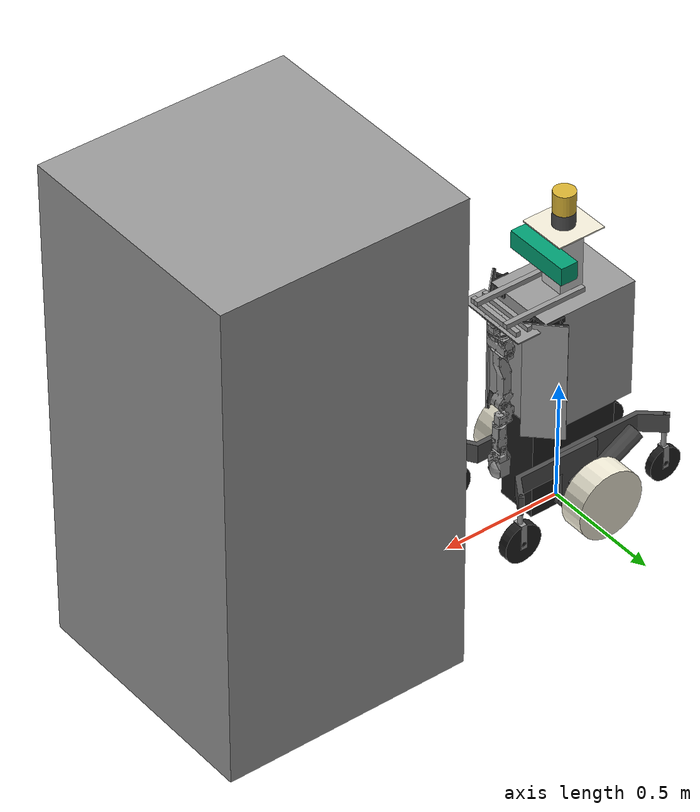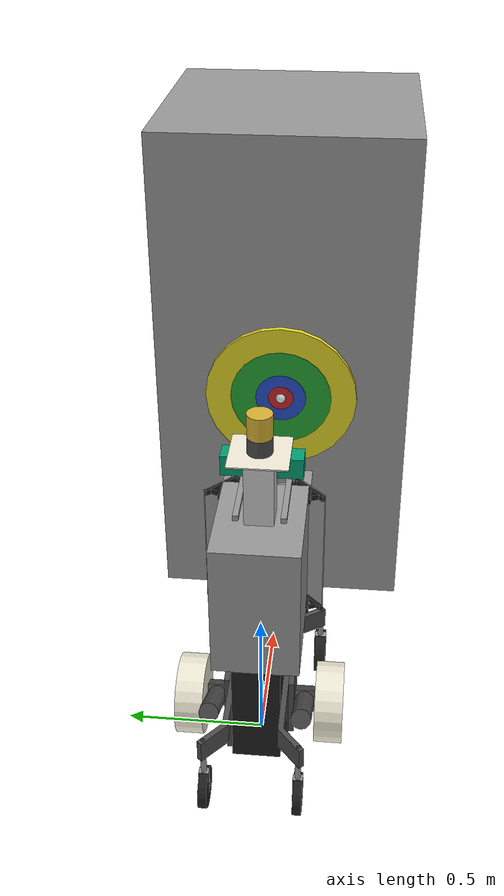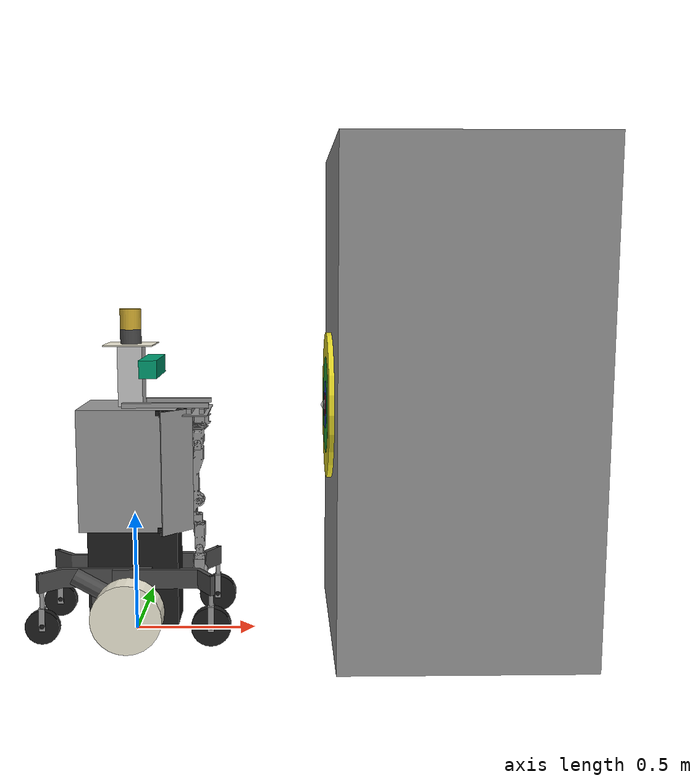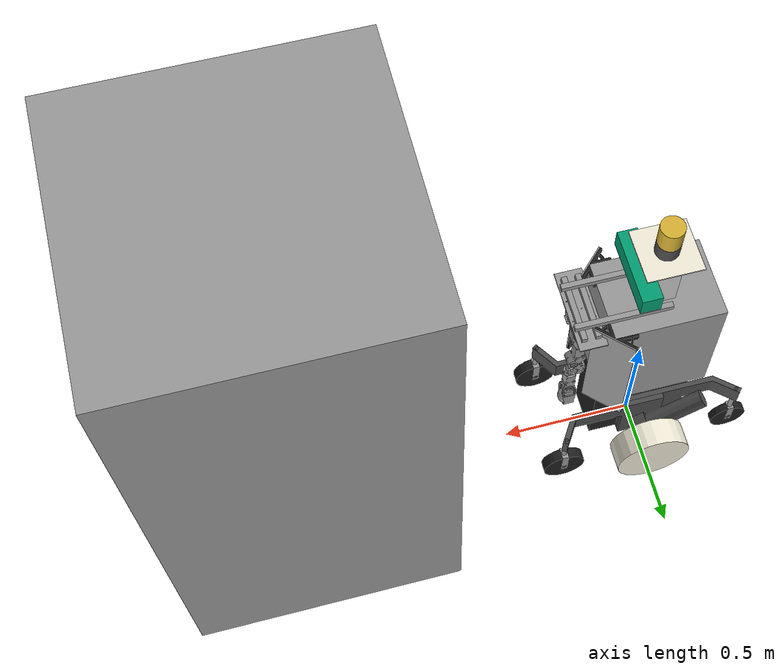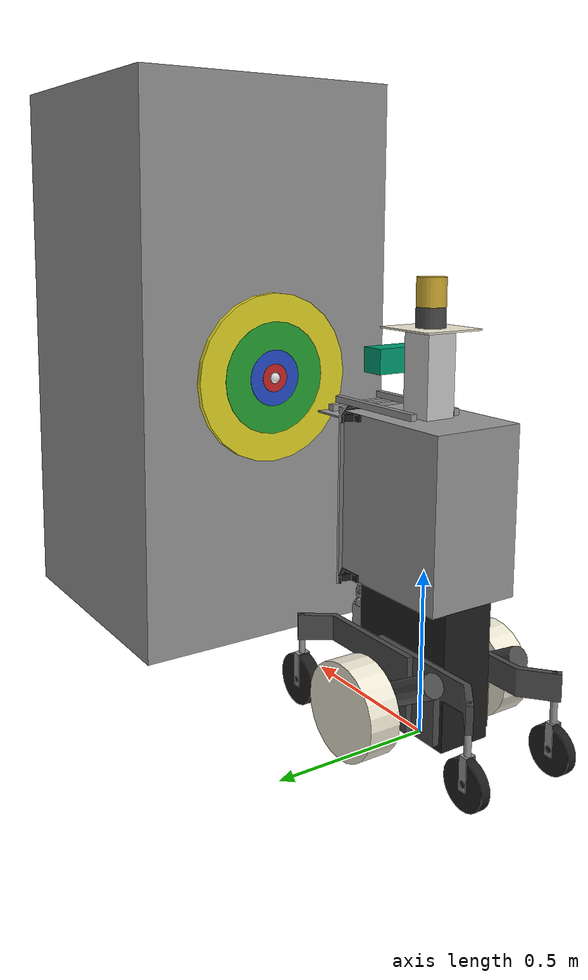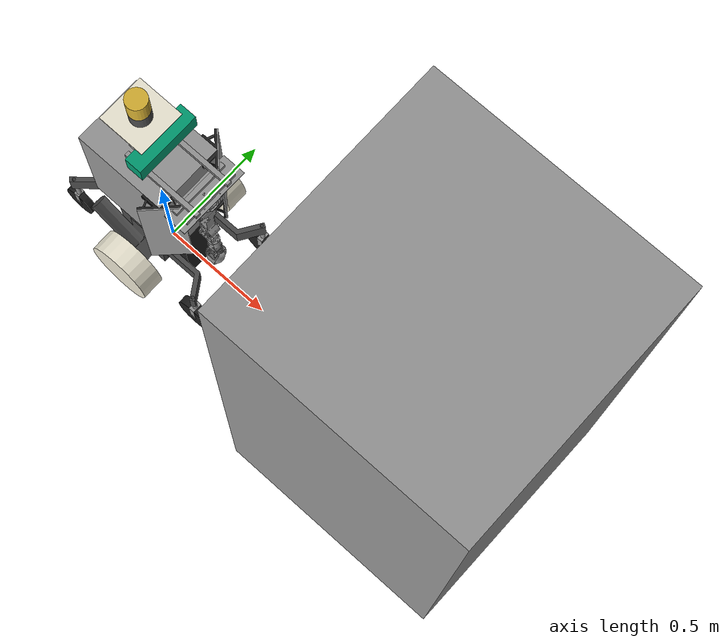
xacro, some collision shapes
<?xml version="1.0" ?>
<robot name="infant" xmlns:xacro="http://ros.org/wiki/xacro">

	<!-- constants for robot dimentions -->
	<xacro:property name="pi" value="3.141592"/>
	<xacro:property name="battery_depth" value="0.370"/>
	<xacro:property name="battery_width" value="0.170"/>
	<xacro:property name="battery_height" value="0.415"/>
	<xacro:property name="rocker_bogie_back_depth" value="0.46056514"/>
	<xacro:property name="rocker_bogie_back_width" value="0.09383127"/>
	<xacro:property name="rocker_bogie_back_height" value="0.230"/>
	<xacro:property name="rocker_bogie_front_depth" value="0.42535668"/>
	<xacro:property name="rocker_bogie_front_width" value="0.11153324"/>
	<xacro:property name="rocker_bogie_front_height" value="0.230"/>
	<xacro:property name="caster_small_length" value="0.065"/>
	<xacro:property name="caster_small_radius" value="0.010"/>
	<xacro:property name="caster_large_length" value="0.045"/>
	<xacro:property name="caster_large_radius" value="0.010"/>
	<xacro:property name="velodyne_base_length" value="0.0586740"/>
	<xacro:property name="velodyne_diameter" value="0.0853440"/>
	<xacro:property name="velodyne_top_length" value="0.0835714"/>
	<xacro:property name="velodyne_laser_depth" value="0.03475311"/>
	<xacro:property name="velodyne_laser_height" value="0.0404979"/>
	<xacro:property name="velodyne_laser_width" value="0.0468099"/>

	<xacro:property name="cam_px" value="0" />
	<xacro:property name="cam_pz" value="0" />
	<xacro:property name="cam_or" value="0" />
	<xacro:property name="cam_op" value="0" />
	<xacro:property name="cam_oy" value="0" />

	<xacro:property name="kinect_cam_py" value="-0.0125"/>

	<!-- inertial for box -->

	<!-- inertial for cylinder -->

	<!-- inertial for wheel -->

	<!-- inertial for box -->
	<xacro:macro
		name="default_box_inertial"
		params="mass depth width height x_offset y_offset z_offset">
		<inertial>
			<origin xyz="${x_offset} ${y_offset} ${z_offset}" rpy="0 0 0"/>
			<mass value="${mass}"/>
			<inertia
				ixx="1.0" ixy="0.0" ixz="0.0"
				iyy="1.0" iyz="0.0"
				izz="1.0"/>
		</inertial>
	</xacro:macro>

	<!-- inertial for cylinder -->
	<xacro:macro
		name="default_cylinder_inertial"
		params="mass length radius x_offset y_offset z_offset">
		<inertial>
			<origin xyz="${x_offset} ${y_offset} ${z_offset}" rpy="0 0 0"/>
			<mass value="${mass}"/>
			<inertia
				ixx="1.0" ixy="0.0" ixz="0.0"
				iyy="1.0" iyz="0.0"
				izz="1.0"/>
		</inertial>
	</xacro:macro>

	<!-- inertial for wheel -->
	<xacro:macro
		name="default_wheel_inertial"
		params="mass length radius x_offset y_offset z_offset">
		<inertial>
			<origin xyz="${x_offset} ${y_offset} ${z_offset}" rpy="0 0 0"/>
			<mass value="${mass}"/>
			<inertia
				ixx="1.0" ixy="0.0" ixz="0.0"
				iyy="1.0" iyz="0.0"
				izz="1.0"/>
		</inertial>
	</xacro:macro>

	<!-- import Rviz color -->
	<xacro:include filename="$(find infant_description)/materials/materials.xacro"/>

	<!-- import all Gazebo-customization elements, including Gazebo colors -->
	<xacro:include filename="$(find infant_description)/urdf/infant_repair2.gazebo.xacro"/>

	<link name="world"/>

	<joint name="fixed" type="fixed">
		<parent link="world"/>
		<child link="base_link"/>
		<origin xyz="0 0 0" rpy="0 0 0"/>
	</joint>

	<!-- rocker bogie -->
	<link name="base_link"/>

	<joint name="base_to_battery_joint" type="fixed">
		<parent link="base_link"/>
		<child link="battery_link"/>
		<origin xyz="0 0 0.145" rpy="0 0 0"/>
	</joint>

	<link name="battery_link">
		<visual>
			<geometry>
				<box size="${battery_depth} ${battery_width} ${battery_height}"/>
			</geometry>
			<origin xyz="0 0 0.1075" rpy="0 0 0"/>
			<material name="black"/>
		</visual>
		<collision>
			<geometry>
				<box size="${battery_depth} ${battery_width} ${battery_height}"/>
			</geometry>
			<origin xyz="0 0 0.1075" rpy="0 0 0"/>
		</collision>
		<xacro:default_box_inertial
			mass="40" depth="${battery_depth}" width="${battery_width}" height="${battery_height}"
			x_offset="0.0" y_offset="0.0" z_offset="0.085"/>
	</link>

	<xacro:macro name="rocker_bogie_back" params="prefix reflect1 reflect2">
		<joint name="rocker_bogie_back_${prefix}_joint" type="fixed">
			<parent link="battery_link"/>
			<child link="rocker_bogie_back_${prefix}_link"/>
			<origin xyz="0 ${reflect1*0.085} 0" rpy="0 0 0"/>
		</joint>

		<link name="rocker_bogie_back_${prefix}_link">
			<visual>
				<geometry>
					<mesh filename="package://infant_description/meshes/rocker_bogie_parts_back_${prefix}.dae"/>
				</geometry>
				<origin xyz="0 ${reflect2*(-0.020)} 0" rpy="0 ${pi} 0"/>
			</visual>
			<collision>
				<geometry>
					<box size="${rocker_bogie_back_depth} ${rocker_bogie_back_width} ${rocker_bogie_back_height}"/>
				</geometry>
				<origin
					xyz="-${(rocker_bogie_back_depth/2)-0.080} ${reflect1*(rocker_bogie_back_width/2)} 0.035" rpy="0 0 0"/>
			</collision>
			<xacro:default_box_inertial
				mass="5"
				depth="${rocker_bogie_back_depth}"
				width="${rocker_bogie_back_width}"
				height="${rocker_bogie_back_height}"
				x_offset="-${(rocker_bogie_back_depth/2)-0.080}"
				y_offset="${reflect1*(rocker_bogie_back_width/2)}"
				z_offset="0.035"/>
		</link>
	</xacro:macro>

	<xacro:rocker_bogie_back prefix="left" reflect1="1" reflect2="0"/>
	<xacro:rocker_bogie_back prefix="right" reflect1="-1" reflect2="1"/>

	<xacro:macro name="rocker_bogie_front" params="prefix reflect1 reflect2">
		<joint name="rocker_bogie_front_${prefix}_joint" type="fixed">
			<parent link="battery_link"/>
			<child link="rocker_bogie_front_${prefix}_link"/>
			<origin xyz="0 ${reflect1*0.105} 0" rpy="0 0 0"/>
		</joint>

		<link name="rocker_bogie_front_${prefix}_link">
			<visual>
				<geometry>
					<mesh filename="package://infant_description/meshes/rocker_bogie_parts_front_${prefix}.dae"/>
				</geometry>
				<origin xyz="0 ${reflect2*(0.020)} 0" rpy="${pi} 0 0"/>
			</visual>
			<collision>
				<geometry>
					<box size="${rocker_bogie_front_depth} ${rocker_bogie_front_width} ${rocker_bogie_front_height}"/>
				</geometry>
				<origin xyz="${(rocker_bogie_front_depth/2)-0.080} ${reflect1*(rocker_bogie_front_width/2)} 0.035" rpy="0 0 0"/>
			</collision>
			<xacro:default_box_inertial
				mass="5"
				depth="${rocker_bogie_front_depth}"
				width="${rocker_bogie_front_width}"
				height="${rocker_bogie_front_height}"
				x_offset="${(rocker_bogie_front_depth/2)-0.080}"
				y_offset="${reflect1*(rocker_bogie_front_width/2)}"
				z_offset="0.035"/>

		</link>
	</xacro:macro>

	<xacro:rocker_bogie_front prefix="left" reflect1="1" reflect2="1"/>
	<xacro:rocker_bogie_front prefix="right" reflect1="-1" reflect2="0"/>

	<xacro:macro name="caster_small" params="prefix reflect">
		<joint name="caster_small_${prefix}_joint" type="fixed">
			<parent link="rocker_bogie_back_${prefix}_link"/>
			<child link="caster_small_${prefix}_link"/>
			<origin xyz="-0.360 ${reflect*0.075} 0.070" rpy="0 0 0"/>
			<axis xyz="0 0 1"/>
		</joint>

		<link name="caster_small_${prefix}_link">
			<visual>
				<geometry>
					<mesh filename="package://infant_description/meshes/caster_small.dae"/>
				</geometry>
				<origin xyz="0 0 0" rpy="-${pi/2} 0 ${pi/2}"/>
			</visual>
			<collision>
				<geometry>
					<cylinder length="${caster_small_length}" radius="${caster_small_radius}"/>
				</geometry>
				<origin xyz="0 0 -${caster_small_length/2}" rpy="0 0 0"/>
			</collision>
			<xacro:default_cylinder_inertial
				mass="0.5" length="${caster_small_length}" radius="${caster_small_radius}"
				x_offset="0.0" y_offset="0.0" z_offset="-${caster_small_length/2}"/>
		</link>
	</xacro:macro>

	<xacro:caster_small prefix="left" reflect="1"/>
	<xacro:caster_small prefix="right" reflect="-1"/>

	<xacro:macro name="caster_large" params="prefix reflect">
		<joint name="caster_large_${prefix}_joint" type="fixed">
			<parent link="rocker_bogie_front_${prefix}_link"/>
			<child link="caster_large_${prefix}_link"/>
			<origin xyz="0.330 ${reflect*0.095} 0.070" rpy="0 0 0"/>
			<axis xyz="0 0 1"/>
		</joint>

		<link name="caster_large_${prefix}_link">
			<visual>
				<geometry>
					<mesh filename="package://infant_description/meshes/caster_large.dae"/>
				</geometry>
				<origin xyz="0 0 0" rpy="-${pi/2} 0 ${pi/2}"/>
			</visual>
			<collision>
				<geometry>
					<cylinder length="${caster_large_length}" radius="${caster_large_radius}"/>
				</geometry>
				<origin xyz="0 0 -${caster_large_length/2}" rpy="0 0 0"/>
			</collision>
			<xacro:default_cylinder_inertial
				mass="0.5" length="${caster_large_length}" radius="${caster_large_radius}"
				x_offset="0.0" y_offset="0.0" z_offset="-${caster_large_length/2}"/>
		</link>
	</xacro:macro>

	<xacro:caster_large prefix="left" reflect="1"/>
	<xacro:caster_large prefix="right" reflect="-1"/>

	<xacro:macro name="wheel" params="prefix reflect">
		<joint name="wheel_${prefix}_joint" type="fixed">
			<parent link="rocker_bogie_front_${prefix}_link"/>
			<child link="wheel_${prefix}_link"/>
			<origin xyz="0 ${reflect*0.145} 0" rpy="0 0 0"/>
			<axis xyz="0 1 0"/>
		</joint>

		<link name="wheel_${prefix}_link">
			<visual>
				<geometry>
					<cylinder length="0.100" radius="0.14240"/>
				</geometry>
				<origin xyz="0 0 0" rpy="${pi/2} 0 0"/>
				<material name="ivory"/>
			</visual>
			<collision>
				<geometry>
					<cylinder length="0.100" radius="0.14240"/>
				</geometry>
				<origin xyz="0 0 0" rpy="${pi/2} 0 0"/>
			</collision>
			<xacro:default_wheel_inertial
				mass="4" length="0.100" radius="0.142240"
				x_offset="0.0" y_offset="0.0" z_offset="0.0"/>
		</link>
	</xacro:macro>

	<xacro:wheel prefix="left" reflect="1"/>
	<xacro:wheel prefix="right" reflect="-1"/>

	<xacro:macro name="wheel_small" params="prefix">
		<joint name="wheel_small_${prefix}_joint" type="fixed">
			<parent link="caster_small_${prefix}_link"/>
			<child link="wheel_small_${prefix}_link"/>
			<origin xyz="0 0 -0.145" rpy="0 0 0"/>
			<axis xyz="0 1 0"/>
		</joint>

		<link name="wheel_small_${prefix}_link">
			<visual>
				<geometry>
					<cylinder length="0.030" radius="0.070"/>
				</geometry>
				<origin xyz="0 0 0" rpy="${pi/2} 0 0"/>
				<material name="black"/>
			</visual>
			<collision>
				<geometry>
					<cylinder length="0.030" radius="0.070"/>
				</geometry>
				<origin xyz="0 0 0" rpy="${pi/2} 0 0"/>
			</collision>
			<xacro:default_wheel_inertial
				mass="1.5" length="0.030" radius="0.070"
				x_offset="0.0" y_offset="0.0" z_offset="0.0"/>
		</link>
	</xacro:macro>

	<xacro:wheel_small prefix="left"/>
	<xacro:wheel_small prefix="right"/>

	<xacro:macro name="wheel_large" params="prefix">
		<joint name="wheel_large_${prefix}_joint" type="fixed">
			<parent link="caster_large_${prefix}_link"/>
			<child link="wheel_large_${prefix}_link"/>
			<origin xyz="0 0 -0.130" pry="0 0 0"/>
			<axis xyz="0 1 0"/>
		</joint>

		<link name="wheel_large_${prefix}_link">
			<visual>
				<geometry>
					<cylinder length="0.040" radius="0.080"/>
				</geometry>
				<origin xyz="0 0 0" rpy="${pi/2} 0 0"/>
				<material name="black"/>
			</visual>
			<collision>
				<geometry>
					<cylinder length="0.040" radius="0.080"/>
				</geometry>
				<origin xyz="0 0 0" rpy="${pi/2} 0 0"/>
			</collision>
			<xacro:default_wheel_inertial
				mass="1.5" length="0.040" radius="0.080"
				x_offset="0.0" y_offset="0.0" z_offset="0.0"/>
		</link>
	</xacro:macro>

	<xacro:wheel_large prefix="left"/>
	<xacro:wheel_large prefix="right"/>

	<!-- box -->
	<joint name="box_joint" type="fixed">
		<parent link="battery_link"/>
		<child link="box_link"/>
		<origin xyz="0 0 0.565" rpy="0 0 0"/>
	</joint>

	<link name="box_link">
		<visual>
			<geometry>
				<box size="0.400 0.300 0.500"/>
			</geometry>
			<origin xyz="-0.005 0 0" rpy="0 0 0"/>
			<material name="gray"/>
		</visual>
		<collision>
			<geometry>
				<box size="0.400 0.300 0.500"/>
			</geometry>
			<origin xyz="-0.005 0 0" rpy="0 0 0"/>
		</collision>
		<xacro:default_box_inertial
			mass="30" depth="0.400" width="0.300" height="0.500"
			x_offset="0.0" y_offset="0.0" z_offset="0.0"/>
	</link>

	<joint name="mast_joint" type="fixed">
		<parent link="box_link"/>
		<child link="mast_link"/>
		<origin xyz="0 0 0.375" rpy="0 0 0"/>
	</joint>

	<link name="mast_link">
		<visual>
			<geometry>
				<box size="0.100 0.100 0.250"/>
			</geometry>
			<origin xyz="0 0 0" rpy="0 0 0"/>
			<material name="lightgray"/>
		</visual>
		<collision>
			<geometry>
				<box size="0.100 0.100 0.250"/>
			</geometry>
			<origin xyz="0 0 0" rpy="0 0 0"/>
		</collision>
		<xacro:default_box_inertial
			mass="10" depth="0.100" width="0.100" height="0.250"
			x_offset="0.0" y_offset="0.0" z_offset="0.0"/>
	</link>

	<joint name="table_joint" type="fixed">
		<parent link="mast_link"/>
		<child link="table_link"/>
		<origin xyz="0 0 0.1275" rpy="0 0 0"/>
	</joint>

	<link name="table_link">
		<visual>
			<geometry>
				<box size="0.200 0.200 0.005"/>
			</geometry>
			<origin xyz="0 0 0" rpy="0 0 0"/>
			<material name="ivory"/>
		</visual>
		<collision>
			<geometry>
				<box size="0.200 0.200 0.005"/>
			</geometry>
			<origin xyz="0 0 0" rpy="0 0 0"/>
		</collision>
		<xacro:default_box_inertial
			mass="1" depth="0.200" width="0.200" height="0.005"
			x_offset="0.0" y_offset="0.0" z_offset="0.0"/>
	</link>

	<!-- velodyne -->
	<joint name="velodyne_base_joint" type="fixed">
		<parent link="table_link"/>
		<child link="velodyne_base_link"/>
		<origin xyz="0 0 0.0025" rpy="0 0 0"/>
	</joint>

	<link name="velodyne_base_link">
		<visual>
			<geometry>
				<cylinder length="${velodyne_base_length}" radius="${velodyne_diameter/2}"/>
			</geometry>
			<origin xyz="0 0 ${velodyne_base_length/2}" rpy="0 0 0"/>
			<material name="darkgray"/>
		</visual>
		<collision>
			<geometry>
				<cylinder length="${velodyne_base_length}" radius="${velodyne_diameter/2}"/>
			</geometry>
			<origin xyz="0 0 ${velodyne_base_length/2}" rpy="0 0 0"/>
		</collision>
		<xacro:default_cylinder_inertial
			mass="1.0" length="${velodyne_base_length}" radius="${velodyne_diameter/2}"
			x_offset="0.0" y_offset="0.0" z_offset="${velodyne_base_length/2}"/>
	</link>

	<joint name="velodyne_top_joint" type="continuous">
		<parent link="velodyne_base_link"/>
		<child link="velodyne_top_link"/>
		<origin xyz="0 0 ${velodyne_base_length}" rpy="0 0 0"/>
		<axis xyz="0 0 1"/>
	</joint>

	<link name="velodyne_top_link">
		<visual>
			<geometry>
				<mesh filename="package://infant_description/meshes/velodyne_top.dae"/>
			</geometry>
			<origin xyz="0 0 0" rpy="${pi/2} 0 0"/>
		</visual>
		<collision>
			<geometry>
				<cylinder length="${velodyne_top_length}" radius="${velodyne_diameter/2}"/>
			</geometry>
			<origin xyz="0 0 ${velodyne_top_length/2}" rpy="0 0 0"/>
		</collision>
		<xacro:default_cylinder_inertial
			mass="0.0001" length="${velodyne_top_length}" radius="${velodyne_diameter/2}"
			x_offset="0.0" y_offset="0.0" z_offset="${velodyne_top_length/2}"/>
	</link>

	<joint name="velodyne_laser_joint" type="fixed">
		<parent link="velodyne_top_link"/>
		<child link="velodyne_laser_link"/>
		<origin xyz="0 0 ${0.0069204+(velodyne_laser_height/2)}" rpy="0 0 0"/>
	</joint>

	<link name="velodyne_laser_link">
		<visual>
			<geometry>
				<box size="${velodyne_laser_depth} ${velodyne_laser_width} ${velodyne_laser_height}"/>
			</geometry>
			<origin xyz="${velodyne_laser_depth/2} 0 0" rpy="0 0 0"/>
			<material name="lase_black"/>
		</visual>
		<collision>
			<geometry>
				<box size="${velodyne_laser_depth} ${velodyne_laser_width} ${velodyne_laser_height}"/>
			</geometry>
			<origin xyz="${velodyne_laser_depth/2} 0 0" rpy="0 0 0"/>
		</collision>
		<xacro:default_box_inertial
			mass="0.0001"
			depth="${velodyne_laser_depth}"
			width="${velodyne_laser_width}"
			height="${velodyne_laser_height}"
			x_offset="${velodyne_laser_depth/2}"
			y_offset="0.0"
			z_offset="0.0"/>
	</link>

	<!-- arm base -->
	<joint name="box_to_forty_five1_joint" type="fixed">
		<parent link="box_link"/>
		<child link="forty_five_link1"/>
		<origin xyz="${0.200-0.045} ${-0.150-0.0045} ${0.250}" rpy="0 0 0"/>
	</joint>

	<link name="forty_five_link1">
		<visual>
			<geometry>
				<mesh filename="package://infant_description/meshes/forty_five_joint.dae"/>
			</geometry>
			<origin rpy="-${pi/2} 0 0" xyz="0 0 0"/>
		</visual>
		<collision>
			<geometry>
				<box size="0.001 0.001 0.001"/>
			</geometry>
			<origin rpy="-${pi/2} 0 0" xyz="0 -0.024 -0.010"/>
		</collision>
		<xacro:default_inertial
			mass="0.010" depth="0.001" width="0.001" height="0.001"
			x_offset="0.0" y_offset="0.0" z_offset="0.0"/>
	</link>

	<joint name="box_to_forty_five2_joint" type="fixed">
		<parent link="box_link"/>
		<child link="forty_five_link2"/>
		<origin xyz="${0.200-0.045} ${-0.150-0.0045} ${-0.250+0.020}" rpy="0 0 0"/>
	</joint>

	<link name="forty_five_link2">
		<visual>
			<geometry>
				<mesh filename="package://infant_description/meshes/forty_five_joint.dae"/>
			</geometry>
			<origin rpy="-${pi/2} 0 0" xyz="0 0 0"/>
		</visual>
		<collision>
			<geometry>
				<box size="0.001 0.001 0.001"/>
			</geometry>
			<origin rpy="0 0 0" xyz="0 -0 0"/>
		</collision>
		<xacro:default_inertial
			mass="0.010" depth="0.001" width="0.001" height="0.001"
			x_offset="0.0" y_offset="0.0" z_offset="0.0"/>
	</link>

	<joint name="box_to_forty_five3_joint" type="fixed">
		<parent link="box_link"/>
		<child link="forty_five_link3"/>
		<origin xyz="${0.200-0.0005} ${-0.150+0.040} ${0.250-0.020}" rpy="0 0 0"/>
	</joint>

	<link name="forty_five_link3">
		<visual>
			<geometry>
				<mesh filename="package://infant_description/meshes/forty_five_joint.dae"/>
			</geometry>
			<origin rpy="${pi/2} 0 -${pi/2}" xyz="0 0 0"/>
		</visual>
		<collision>
			<geometry>
				<box size="0.001 0.001 0.001"/>
			</geometry>
			<origin rpy="0 0 0" xyz="0 0 0"/>
		</collision>
		<xacro:default_inertial
			mass="0.010" depth="0.001" width="0.001" height="0.001"
			x_offset="0.0" y_offset="0.0" z_offset="0.0"/>
	</link>

	<joint name="box_to_forty_five4_joint" type="fixed">
		<parent link="box_link"/>
		<child link="forty_five_link4"/>
		<origin xyz="${0.200-0.0005} ${-0.150+0.04} ${-0.250}" rpy="0 0 0"/>
	</joint>

	<link name="forty_five_link4">
		<visual>
			<geometry>
				<mesh filename="package://infant_description/meshes/forty_five_joint.dae"/>
			</geometry>
			<origin rpy="${pi/2} 0 -${pi/2}" xyz="0 0 0"/>
		</visual>
		<collision>
			<geometry>
				<box size="0.001 0.001 0.001"/>
			</geometry>
			<origin rpy="0 0 0" xyz="0 0 0"/>
		</collision>
		<xacro:default_inertial
			mass="0.010" depth="0.000" width="0.001" height="0.001"
			x_offset="0.0" y_offset="0.0" z_offset="0.0"/>
	</link>

	<joint name="box_to_forty_five5_joint" type="fixed">
		<parent link="box_link"/>
		<child link="forty_five_link5"/>
		<origin xyz="${0.200-0.045} ${0.150+0.0045} ${0.250-0.020}" rpy="0 0 0"/>
	</joint>

	<link name="forty_five_link5">
		<visual>
			<geometry>
				<mesh filename="package://infant_description/meshes/forty_five_joint.dae"/>
			</geometry>
			<origin rpy="${pi/2} 0 0" xyz="0 0 0"/>
		</visual>
		<collision>
			<geometry>
				<box size="0.001 0.001 0.001"/>
			</geometry>
			<origin rpy="0 0 0" xyz="0 0 0"/>
		</collision>
		<xacro:default_inertial
			mass="0.010" depth="0.001" width="0.001" height="0.001"
			x_offset="0.0" y_offset="0.0" z_offset="0.0"/>
	</link>

	<joint name="box_to_forty_five6_joint" type="fixed">
		<parent link="box_link"/>
		<child link="forty_five_link6"/>
		<origin xyz="${0.200-0.045} ${0.150+0.0045} ${-0.250}" rpy="0 0 0"/>
	</joint>

	<link name="forty_five_link6">
		<visual>
			<geometry>
				<mesh filename="package://infant_description/meshes/forty_five_joint.dae"/>
			</geometry>
			<origin rpy="${pi/2} 0 0" xyz="0 0 0"/>
		</visual>
		<collision>
			<geometry>
				<box size="0.001 0.001 0.001"/>
			</geometry>
			<origin rpy="0 0 0" xyz="0 -0 0"/>
		</collision>
		<xacro:default_inertial
			mass="0.010" depth="0.001" width="0.001" height="0.001"
			x_offset="0.0" y_offset="0.0" z_offset="0.0"/>
	</link>

	<joint name="box_to_forty_five7_joint" type="fixed">
		<parent link="box_link"/>
		<child link="forty_five_link7"/>
		<origin xyz="${0.200-0.0005} ${0.150-0.040} ${0.250}" rpy="0 0 0"/>
	</joint>

	<link name="forty_five_link7">
		<visual>
			<geometry>
				<mesh filename="package://infant_description/meshes/forty_five_joint.dae"/>
			</geometry>
			<origin rpy="${pi/2} ${pi} -${pi/2}" xyz="0 0 0"/>
		</visual>
		<collision>
			<geometry>
				<box size="0.001 0.001 0.001"/>
			</geometry>
			<origin rpy="0 0 0" xyz="0 0 0"/>
		</collision>
		<xacro:default_inertial
			mass="0.010" depth="0.001" width="0.001" height="0.001"
			x_offset="0.0" y_offset="0.0" z_offset="0.0"/>
	</link>

	<joint name="box_to_forty_five8_joint" type="fixed">
		<parent link="box_link"/>
		<child link="forty_five_link8"/>
		<origin xyz="${0.200-0.0005} ${0.150-0.04} ${-0.250+0.020}" rpy="0 0 0"/>
	</joint>

	<link name="forty_five_link8">
		<visual>
			<geometry>
				<mesh filename="package://infant_description/meshes/forty_five_joint.dae"/>
			</geometry>
			<origin rpy="${pi/2} ${pi} -${pi/2}" xyz="0 0 0"/>
		</visual>
		<collision>
			<geometry>
				<box size="0.001 0.001 0.001"/>
			</geometry>
			<origin rpy="0 0 0" xyz="0 0 0"/>
		</collision>
		<xacro:default_inertial
			mass="0.010" depth="0.000" width="0.001" height="0.001"
			x_offset="0.0" y_offset="0.0" z_offset="0.0"/>
	</link>

	<joint name="box_link_to_arm_board_left_joint" type="fixed">
		<parent link="box_link"/>
		<child link="arm_board_left_link"/>
		<origin xyz="0.195 0.150 0" rpy="0 0 ${pi/4}"/>
	</joint>

	<link name="arm_board_left_link">
		<visual>
			<origin xyz="0.0025 0 0" rpy="0 0 0" />
			<geometry>
				<box size="0.005 0.160 0.500"/>
			</geometry>
			<material name="gray"/>
		</visual>
		<collision>
			<origin xyz="0.0025 0 0" rpy="0 0 0" />
			<geometry>
				<box size="0.005 0.160 0.500"/>
			</geometry>
		</collision>
		<xacro:default_box_inertial
			mass="0.05" depth="0.005" width="0.160" height="0.500"
			x_offset="0.0" y_offset="0.0" z_offset="0.0"/>
	</link>

	<joint name="box_link_to_arm_board_right_joint" type="fixed">
		<parent link="box_link"/>
		<child link="arm_board_right_link"/>
		<origin xyz="0.195 -0.150 0" rpy="0 0 -${pi/4}"/>
	</joint>

	<link name="arm_board_right_link">
		<visual>
			<origin xyz="0.0025 0 0" rpy="0 0 0" />
			<geometry>
				<box size="0.005 0.160 0.500"/>
			</geometry>
			<material name="gray"/>
		</visual>
		<collision>
			<origin xyz="0.0025 0 0" rpy="0 0 0" />
			<geometry>
				<box size="0.005 0.160 0.500"/>
			</geometry>
		</collision>
		<xacro:default_box_inertial
			mass="0.05" depth="0.005" width="0.160" height="0.500"
			x_offset="0.0" y_offset="0.0" z_offset="0.0"/>
	</link>

	<xacro:macro name="alumi_frame" params="prefix reflect">
		<joint name="box_to_alumi_frame_${prefix}" type="fixed">
			<parent link="box_link"/>
			<child link="alumi_frame_${prefix}_link"/>
			<origin xyz="0.015 ${reflect*0.080} ${0.250+0.010}" rpy="0 0 0"/>
		</joint>

		<link name="alumi_frame_${prefix}_link">
			<visual>
				<geometry>
					<box size="0.020 0.020 0.350"/>
				</geometry>
				<origin xyz="${0.350/2-0.045} 0 0" rpy="0 ${pi/2} 0"/>
				<material name="gray"/>
			</visual>
			<collision>
				<geometry>
					<box size="0.020 0.020 0.350"/>
				</geometry>
				<origin xyz="${0.350/2} 0 0" rpy="0 ${pi/2} 0"/>
			</collision>
			<xacro:default_box_inertial
				mass="0.05" depth="0.020" width="0.020" height="0.350"
				x_offset="0.0" y_offset="0.0" z_offset="0.0"/>
		</link>
	</xacro:macro>

	<xacro:alumi_frame prefix="left" reflect="-1"/>
	<xacro:alumi_frame prefix="right" reflect="1"/>

	<xacro:macro name="alumi_frame2" params="suffix reflect">
		<joint name="box_to_alumi_frame_${suffix}" type="fixed">
			<parent link="box_link"/>
			<child link="alumi_frame_${suffix}_link"/>
			<origin xyz="${0.195+0.050+0.025+reflect*0.025} 0 ${0.250-0.010}" rpy="0 0 0"/>
		</joint>

		<link name="alumi_frame_${suffix}_link">
			<visual>
				<geometry>
					<box size="0.020 0.020 0.250"/>
				</geometry>
				<origin xyz="0 0 0" rpy="${pi/2} 0 0"/>
				<material name="gray"/>
			</visual>
			<collision>
				<geometry>
					<box size="0.020 0.020 0.250"/>
				</geometry>
				<origin xyz="0 0 0" rpy="${pi/2} 0 0"/>
			</collision>
			<xacro:default_box_inertial
				mass="0.05" depth="0.020" width="0.020" height="0.250"
				x_offset="0.0" y_offset="0.0" z_offset="0.0"/>
		</link>
	</xacro:macro>

	<xacro:alumi_frame2 suffix="front" reflect="1"/>
	<xacro:alumi_frame2 suffix="back" reflect="-1"/>

	<joint name="box_to_arm_board" type="fixed">
		<parent link="box_link"/>
		<child link="arm_board_link"/>
		<origin xyz="${0.195+0.050+0.025} 0 ${0.250-0.020-0.0025}" rpy="0 0 0"/>
	</joint>

	<link name="arm_board_link">
		<visual>
			<geometry>
				<box size="0.100 0.310 0.005"/>
			</geometry>
			<origin xyz="0 0 0" rpy="0 0 0"/>
			<material name="gray"/>
		</visual>
		<collision>
			<geometry>
				<box size="0.100 0.310 0.005"/>
			</geometry>
			<origin xyz="0 0 0" rpy="0 0 0"/>
		</collision>
		<xacro:default_box_inertial
			mass="0.05" depth="0.100" width="0.310" height="0.005"
			x_offset="0.0" y_offset="0.0" z_offset="0.0"/>
	</link>

	<!-- kinect -->
	<joint name="kinect_base_joint" type="fixed">
		<parent link="mast_link"/>
		<child link="kinect_base_link"/>
		<origin rpy="0 0 0" xyz="${0.050+0.035} 0 0"/>
	</joint>

	<link name="kinect_base_link">
		<visual>
			<geometry>
				<box size="0.070 0.080 0.002"/>
			</geometry>
			<origin rpy="0 0 0" xyz="0 0 0"/>
			<material name="gray"/>
		</visual>
		<collision>
			<geometry>
				<box size="0.070 0.080 0.002"/>
			</geometry>
			<origin rpy="0 0 0" xyz="0 0 0"/>
		</collision>
		<xacro:default_box_inertial
			mass="0.05" depth="0.070" width="0.080" height="0.002"
			x_offset="0.0" y_offset="0.0" z_offset="0.0"/>
	</link>

	<joint name="kinect_link_joint" type="fixed">
		<parent link="kinect_base_link"/>
		<child link="kinect_link"/>
		<origin rpy="0 0 0" xyz="0 0 0.052"/>
	</joint>

	<link name="kinect_link"/>

	<joint name="camera_rgb_joint" type="fixed">
		<parent link="kinect_link"/>
		<child link="camera_rgb_frame"/>
		<origin rpy="${cam_or} ${cam_op} ${cam_oy}" xyz="${cam_px} ${kinect_cam_py} ${cam_pz}"/>
	</joint>

	<link name="camera_rgb_frame"/>

	<joint name="camera_rgb_optical_joint" type="fixed">
		<parent link="camera_rgb_frame"/>
		<child link="camera_rgb_optical_frame"/>
		<origin rpy="${-pi/2} 0 ${-pi/2}" xyz="0 0 0"/>
	</joint>

	<link name="camera_rgb_optical_frame"/>

	<joint name="camera_joint" type="fixed">
		<parent link="camera_rgb_frame"/>
		<child link="camera_link"/>
		<origin rpy="0 0 0" xyz="0.0 ${-kinect_cam_py} -0.016"/>
	</joint>

	<link name="camera_link">
		<visual>
			<geometry>
				<mesh filename="package://infant_description/meshes/kinect.dae"/>
			</geometry>
			<origin rpy="0 0 ${pi/2}" xyz="0 0 0"/>
		</visual>
		<collision>
			<geometry>
				<box size="0.072 0.277 0.073"/>
			</geometry>
			<origin rpy="0 0 0" xyz="0 0 0"/>
		</collision>
		<xacro:default_inertial
			mass="0.564" depth="0.072" width="0.277" height="0.073"
			x_offset="0.0" y_offset="0.0" z_offset="0.0"/>
	</link>

	<joint name="camera_depth_joint" type="fixed">
		<parent link="camera_rgb_frame"/>
		<child link="camera_depth_frame"/>
		<origin rpy="0 0 0" xyz="0 ${2 * -kinect_cam_py} 0"/>
	</joint>

	<link name="camera_depth_frame"/>

	<joint name="camera_depth_optical_joint" type="fixed">
		<parent link="camera_depth_frame"/>
		<child link="camera_depth_optical_frame"/>
		<origin rpy="${-pi/2} 0 ${-pi/2}" xyz="0 0 0"/>
	</joint>

	<link name="camera_depth_optical_frame"/>

	<!-- Dynamixel Arm -->

	<joint name="arm_base_joint" type="fixed">
		<parent link="arm_board_link"/>
		<child link="arm_base_link"/>
		<origin xyz="0 0 -0.0025" rpy="0 ${pi} ${pi}"/>
	</joint>

	<link name="arm_base_link">
		<visual>
			<geometry>
				<mesh filename="package://infant_description/meshes/Untitled.dae" />
			</geometry>
			<origin xyz="0 0 0" rpy="0 0 0"/>
			<material name="gray"/>
		</visual>
		<collision>
			<geometry>
				<box size="0.100 0.100 0.064"/>
			</geometry>
			<origin xyz="0 0 ${0.064/2}" rpy="0 0 0"/>
		</collision>

		<xacro:default_cylinder_inertial
			mass="0.346" length="0.040" radius="0.040"
			x_offset="0.0" y_offset="0.0" z_offset="-${0.040/2}"/>
	</link>

	<joint name="joint1" type="revolute">
		<parent link="arm_base_link"/>
		<child link="link1"/>
		<origin xyz="0 0 ${0.064}" rpy="0 0 0"/>
		<axis xyz="0 0 1"/>
		<limit effort="6.0" lower="-${175/180*pi}" upper="${175/180*pi}" velocity="${11/6*pi}"/>
	</joint>

	<link name="link1">
		<visual>
			<geometry>
				<mesh filename="package://infant_description/meshes/Untitled4.dae"/>
			</geometry>
			<origin xyz="0 0 0" rpy="${pi/2} 0 0"/>
			<material name="gray"/>
		</visual>
		<collision>
			<geometry>
				<box size="0.035 0.070 0.063"/>
			</geometry>
			<origin xyz="0 0 ${0.063/2}" rpy="0 0 0"/>
		</collision>
		<xacro:default_box_inertial
			mass="0.506" depth="0.035" width="0.070" height="0.050"
			x_offset="0.31" y_offset="0.0" z_offset="${0.050/2}"/>
	</link>

	<joint name="joint2" type="revolute">
		<parent link="link1"/>
		<child link="link2"/>
		<origin xyz="0 0 ${0.063}" rpy="0 0 0"/>
		<axis xyz="0 -1 0"/>
		<limit effort="${2*6.0}" lower="-${95/180*pi}" upper="${95/180*pi}" velocity="${11/6*pi}"/>
	</joint>

	<link name="link2">
		<visual>
			<geometry>
				<mesh filename="package://infant_description/meshes/Untitled5.dae"/>
			</geometry>
			<origin xyz="0 0 0" rpy="0 0 0"/>
			<material name="gray"/>
		</visual>
		<collision>
			<geometry>
				<box size="0.035 0.035 0.250"/>
			</geometry>
			<origin xyz="0 0 ${0.250/2}" rpy="0 0 0"/>
		</collision>
		<xacro:default_box_inertial
			mass="0.452" depth="0.035" width="0.035" height="0.150"
			x_offset="0.0" y_offset="0.0" z_offset="${0.150}"/>
	</link>

	<joint name="joint3" type="revolute">
		<parent link="link2"/>
		<child link="link3"/>
		<origin xyz="0 0 0.250" rpy="0 0 0"/>
		<axis xyz="0 1 0"/>
		<limit effort="6.0" lower="-${10/180*pi}" upper="${150/180*pi}" velocity="${11/6*pi}"/>
	</joint>

	<link name="link3">
		<visual>
			<geometry>
				<mesh filename="package://infant_description/meshes/Untitled8.dae"/>
			</geometry>
			<origin xyz="0 0 0" rpy="0 0 0"/>
			<material name="gray"/>
		</visual>
		<collision>
			<geometry>
				<box size="0.035 0.035 0.100"/>
			</geometry>
			<origin xyz="0 0 ${0.100/2}" rpy="0 0 0"/>
		</collision>

		<xacro:default_box_inertial
			mass="0.232" depth="0.035" width="0.035" height="0.060"
			x_offset="0.0" y_offset="0.0" z_offset="${0.060}"/>
	</link>

	<joint name="joint4" type="revolute">
		<parent link="link3"/>
		<child link="link4"/>
		<origin xyz="0 0 0.100" rpy="0 0 0"/>
		<axis xyz="0 0 1"/>
		<limit effort="6.0" lower="-${175/180*pi}" upper="${175/180*pi}" velocity="${11/6*pi}"/>
	</joint>

	<link name="link4">
		<visual>
			<geometry>
				<mesh filename="package://infant_description/meshes/Untitled6.dae"/>
			</geometry>
			<origin xyz="0 0 0" rpy="${pi/2} 0 0"/>
			<material name="gray"/>
		</visual>
		<collision>
			<geometry>
				<box size="0.035 0.035 0.100"/>
			</geometry>
			<origin xyz="0 0 ${0.100/2}" rpy="0 0 0"/>
		</collision>
		<xacro:default_box_inertial
			mass="0.211" depth="0.035" width="0.035" height="0.060"
			x_offset="0.0" y_offset="0.0" z_offset="${0.0975/2}"/>
	</link>

	<joint name="joint5" type="revolute">
		<parent link="link4"/>
		<child link="link5"/>
		<origin xyz="0 0 0.100" rpy="0 0 0"/>
		<axis xyz="0 -1 0"/>
		<limit effort="6.0" lower="-${95/180*pi}" upper="${95/180*pi}" velocity="${11/6*pi}"/>
	</joint>

	<link name="link5">
		<visual>
			<origin xyz="0 0 0" rpy="0 0 0" />
			<geometry>
				<mesh filename="package://infant_description/meshes/Untitled7.dae"/>
			</geometry>
			<material name="gray"/>
		</visual>
		<collision>
			<origin xyz="0 0 ${0.046/2}" rpy="0 0 0" />
			<geometry>
				<box size="0.024 0.0475 0.046" />
			</geometry>
		</collision>
		<xacro:default_box_inertial
			mass="0.118" depth="0.024" width="0.0475" height="0.061"
			x_offset="0.0" y_offset="0.0" z_offset="${0.061/2}"/>
	</link>

	<joint name="joint6" type="revolute">
		<parent link="link5"/>
		<child link="link6"/>
		<origin xyz="0 -0.0133 0.046" rpy="0 0 0"/>
		<axis xyz="-1 0 0"/>
		<limit effort="6.0" lower="-${40/180*pi}" upper="${20/180*pi}" velocity="${11/6*pi}"/>
	</joint>

	<link name="link6">
		<visual>
			<origin xyz="0 0 0" rpy="0 0 -${pi/2}" />
			<geometry>
				<mesh filename="package://infant_description/meshes/Untitled2.dae"/>
			</geometry>
			<material name="gray"/>
		</visual>
		<collision>
			<origin xyz="0 0 0" rpy="0 0 ${pi/2}" />
			<geometry>
				<cylinder radius="0.012" length="0.0475" />
			</geometry>
		</collision>
		<xacro:default_box_inertial
			mass="0.031" depth="0.0475" width="0.026" height="0.024"
			x_offset="0.0" y_offset="0.0" z_offset="0.0"/>
	</link>

	<joint name="joint7" type="revolute">
		<parent link="link5"/>
		<child link="link7"/>
		<origin xyz="0 0.0133 0.046" rpy="0 0 0"/>
		<axis xyz="-1 0 0"/>
		<limit effort="6.0" lower="-${40/180*pi}" upper="${20/180*pi}" velocity="${11/6*pi}"/>
	</joint>

	<link name="link7">
		<visual>
			<origin xyz="0 0 0" rpy="0 0 -${pi/2}" />
			<geometry>
				<mesh filename="package://infant_description/meshes/Untitled3.dae"/>
			</geometry>
			<material name="gray"/>
		</visual>
		<collision>
			<origin xyz="0 0 0" rpy="0 0 -${pi/2}" />
			<geometry>
				<cylinder radius="0.012" length="0.0475" />
			</geometry>
		</collision>
		<xacro:default_box_inertial
			mass="0.027" depth="0.0475" width="0.026" height="0.024"
			x_offset="0.0" y_offset="0.0" z_offset="0.0"/>
	</link>

	<joint name="joint8" type="revolute">
		<parent link="link5"/>
		<child link="link8"/>
		<origin xyz="0 0 0.130"/>
		<axis xyz="0 1 0"/>
		<limit effort="6.0" lower="-${40/180*pi}" upper="${35/180*pi}" velocity="${11/6*pi}"/>
	</joint>

	<link name="link8">
		<visual>
			<origin xyz="0 0 -0.025" rpy="0 0 0" />
			<geometry>
				<sphere radius="0.033"/>
			</geometry>
			<material name="gray"/>
		</visual>
		<collision>
			<origin xyz="0 0 0" rpy="0 0 0" />
			<geometry>
				<sphere radius="0.033"/>
			</geometry>
		</collision>
		<xacro:default_box_inertial
			mass="0.01" depth="0.06" width="0.06" height="0.06"
			x_offset="0.0" y_offset="0.0" z_offset="0.0"/>
	</link>

	<!-- transmission for Dynamixel Arm-->
	<transmission name="tran1">
		<type>transmission_interface/SimpleTransmission</type>
		<joint name="joint1">
			<hardwareInterface>PositionJointInterface</hardwareInterface>
		</joint>
		<actuator name="motor1">
			<hardwareInterface>PositionJointInterface</hardwareInterface>
			<mechanicalReduction>1</mechanicalReduction>
		</actuator>
	</transmission>

	<transmission name="tran2">
		<type>transmission_interface/SimpleTransmission</type>
		<joint name="joint2">
			<hardwareInterface>PositionJointInterface</hardwareInterface>
		</joint>
		<actuator name="motor2">
			<hardwareInterface>PositionJointInterface</hardwareInterface>
			<mechanicalReduction>1</mechanicalReduction>
		</actuator>
	</transmission>

	<transmission name="tran3">
		<type>transmission_interface/SimpleTransmission</type>
		<joint name="joint3">
			<hardwareInterface>PositionJointInterface</hardwareInterface>
		</joint>
		<actuator name="motor3">
			<hardwareInterface>PositionJointInterface</hardwareInterface>
			<mechanicalReduction>1</mechanicalReduction>
		</actuator>
	</transmission>

	<transmission name="tran4">
		<type>transmission_interface/SimpleTransmission</type>
		<joint name="joint4">
			<hardwareInterface>PositionJointInterface</hardwareInterface>
		</joint>
		<actuator name="motor4">
			<hardwareInterface>PositionJointInterface</hardwareInterface>
			<mechanicalReduction>1</mechanicalReduction>
		</actuator>
	</transmission>

	<transmission name="tran5">
		<type>transmission_interface/SimpleTransmission</type>
		<joint name="joint5">
			<hardwareInterface>PositionJointInterface</hardwareInterface>
		</joint>
		<actuator name="motor5">
			<hardwareInterface>PositionJointInterface</hardwareInterface>
			<mechanicalReduction>1</mechanicalReduction>
		</actuator>
	</transmission>

	<transmission name="tran6">
		<type>transmission_interface/SimpleTransmission</type>
		<joint name="joint6">
			<hardwareInterface>PositionJointInterface</hardwareInterface>
		</joint>
		<actuator name="motor6">
			<hardwareInterface>PositionJointInterface</hardwareInterface>
			<mechanicalReduction>1</mechanicalReduction>
		</actuator>
	</transmission>

	<transmission name="tran7">
		<type>transmission_interface/SimpleTransmission</type>
		<joint name="joint7">
			<hardwareInterface>PositionJointInterface</hardwareInterface>
		</joint>
		<actuator name="motor7">
			<hardwareInterface>PositionJointInterface</hardwareInterface>
			<mechanicalReduction>1</mechanicalReduction>
		</actuator>
	</transmission>

	<transmission name="tran8">
		<type>transmission_interface/SimpleTransmission</type>
		<joint name="joint8">
			<hardwareInterface>PositionJointInterface</hardwareInterface>
		</joint>
		<actuator name="motor8">
			<hardwareInterface>PositionJointInterface</hardwareInterface>
			<mechanicalReduction>1</mechanicalReduction>
		</actuator>
	</transmission>

	<!-- transmission -->

	<transmission name="velodyne_top_trans">
		<type>transmission_interface/SimpleTransmission</type>
		<joint name="velodyne_top_joint">
			<hardwareInterface>VelocityJointInterface</hardwareInterface>
		</joint>
		<actuator name="velodyne_top_motor">
			<hardwareInterface>VelocityJointInterface</hardwareInterface>
			<mechanicalReduction>1</mechanicalReduction>
		</actuator>
	</transmission>

	<joint name="fixed1" type="fixed">
		<parent link="world"/>
		<child link="base1_link"/>
		<origin xyz="1.32 0 0" rpy="0 0 0"/>
	</joint>

	<material name="white_clear">
		<color rgba="1 1 1 0.6"/>
	</material>

	<link name="base1_link">
		<inertial>
			<origin xyz="0 0 1" />
			<mass value="1.0" />
			<inertia  ixx="1.0" ixy="0.0"  ixz="0.0"  iyy="100.0"  iyz="0.0"  izz="1.0" />
		</inertial>
		<visual>
			<origin xyz="0 0 1"/>
			<geometry>
				<box size="1 1 2" />
			</geometry>
			<material name="gray"/>
		</visual>
		<collision>
			<origin xyz="0 0 0.25"/>
			<geometry>
				<box size="1 1 0.5" />
			</geometry>
		</collision>
	</link>

	<joint name="joint_button" type="fixed">
		<parent link="base1_link"/>
		<child link="button"/>
		<origin xyz="-0.50 0 0.96"/>
	</joint>

	<link name="button">
		<inertial>
			<origin xyz="0 0 0" />
			<mass value="1.0" />
			<inertia  ixx="1.0" ixy="0.0"  ixz="0.0"  iyy="100.0"  iyz="0.0"  izz="1.0" />
		</inertial>
		<visual>
			<origin xyz="0 0 0" rpy="0 1.57075 0"/>
			<geometry>
				<cylinder length="0.05" radius="0.02" />
			</geometry>
			<material name="white"/>
		</visual>
	</link>

	<joint name="joint_sphere" type="fixed">
		<parent link="button"/>
		<child link="sphere"/>
		<origin xyz="-0.020 0 0"/>
	</joint>

	<link name="sphere">
		<inertial>
			<origin xyz="0 0 0" />
			<mass value="1.0" />
			<inertia  ixx="1.0" ixy="0.0"  ixz="0.0"  iyy="100.0"  iyz="0.0"  izz="1.0" />
		</inertial>
		<visual>
			<origin xyz="0 0 0" rpy="0 0 0"/>
			<geometry>
				<sphere radius="0.02"/>
			</geometry>
			<material name="white_clear"/>
		</visual>
	</link>

	<joint name="joint_circle1" type="fixed">
		<parent link="base1_link"/>
		<child link="circle1"/>
		<origin xyz="-0.499 0 0.96"/>
	</joint>

	<link name="circle1">
		<inertial>
			<origin xyz="0 0 0" />
			<mass value="1.0" />
			<inertia  ixx="1.0" ixy="0.0"  ixz="0.0"  iyy="100.0"  iyz="0.0"  izz="1.0" />
		</inertial>
		<visual>
			<origin xyz="0 0 0" rpy="0 1.57075 0"/>
			<geometry>
				<cylinder length="0.05" radius="0.05" />
			</geometry>
			<material name="red"/>
		</visual>
	</link>

	<joint name="joint_circle2" type="fixed">
		<parent link="base1_link"/>
		<child link="circle2"/>
		<origin xyz="-0.498 0 0.96"/>
	</joint>

	<link name="circle2">
		<inertial>
			<origin xyz="0 0 0" />
			<mass value="1.0" />
			<inertia  ixx="1.0" ixy="0.0"  ixz="0.0"  iyy="100.0"  iyz="0.0"  izz="1.0" />
		</inertial>
		<visual>
			<origin xyz="0 0 0" rpy="0 1.57075 0"/>
			<geometry>
				<cylinder length="0.05" radius="0.1" />
			</geometry>
			<material name="blue"/>
		</visual>
	</link>

	<joint name="joint_circle3" type="fixed">
		<parent link="base1_link"/>
		<child link="circle3"/>
		<origin xyz="-0.497 0 0.96"/>
	</joint>

	<link name="circle3">
		<inertial>
			<origin xyz="0 0 0" />
			<mass value="1.0" />
			<inertia  ixx="1.0" ixy="0.0"  ixz="0.0"  iyy="100.0"  iyz="0.0"  izz="1.0" />
		</inertial>
		<visual>
			<origin xyz="0 0 0" rpy="0 1.57075 0"/>
			<geometry>
				<cylinder length="0.05" radius="0.2" />
			</geometry>
			<material name="green"/>
		</visual>
	</link>

	<joint name="joint_circle4" type="fixed">
		<parent link="base1_link"/>
		<child link="circle4"/>
		<origin xyz="-0.496 0 0.96"/>
	</joint>

	<link name="circle4">
		<inertial>
			<origin xyz="0 0 0" />
			<mass value="1.0" />
			<inertia  ixx="1.0" ixy="0.0"  ixz="0.0"  iyy="100.0"  iyz="0.0"  izz="1.0" />
		</inertial>
		<visual>
			<origin xyz="0 0 0" rpy="0 1.57075 0"/>
			<geometry>
				<cylinder length="0.05" radius="0.3" />
			</geometry>
			<material name="yellow"/>
		</visual>
	</link>

	<gazebo reference="base1_link">
		<material>Gazebo/Grey</material>
		<mu1>1.0</mu1>
		<mu2>1.0</mu2>
	</gazebo>

	<gazebo reference="button">
		<mu1>1.0</mu1>
		<mu2>1.0</mu2>
	</gazebo>

	<gazebo reference="circle1">
		<material>Gazebo/Red</material>
		<mu1>1.0</mu1>
		<mu2>1.0</mu2>
	</gazebo>
	<gazebo reference="circle2">
		<material>Gazebo/Blue</material>
		<mu1>1.0</mu1>
		<mu2>1.0</mu2>
	</gazebo>
	<gazebo reference="circle3">
		<material>Gazebo/Green</material>
		<mu1>1.0</mu1>
		<mu2>1.0</mu2>
	</gazebo>
	<gazebo reference="circle4">
		<material>Gazebo/Yellow</material>
		<mu1>1.0</mu1>
		<mu2>1.0</mu2>
	</gazebo>

</robot>
